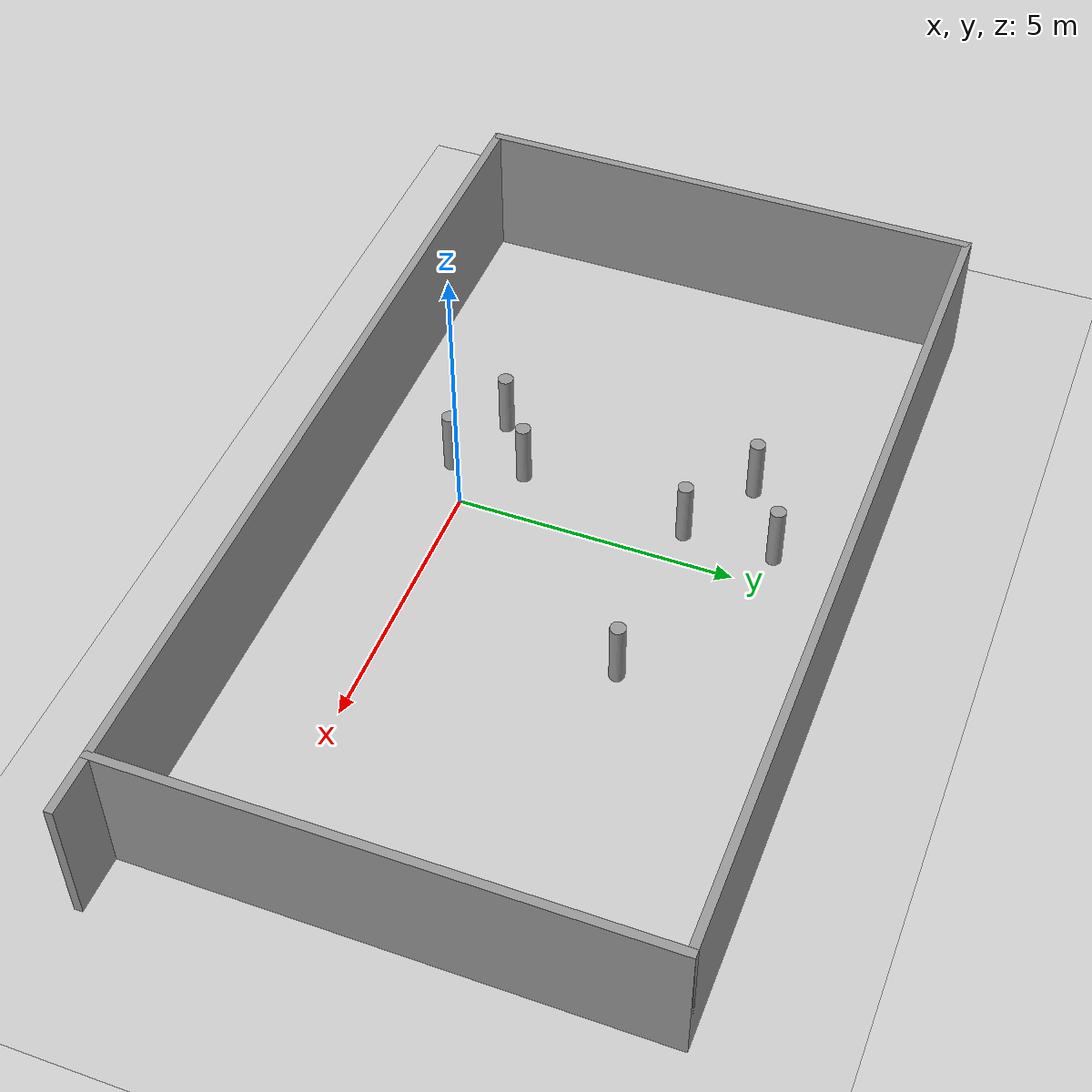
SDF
<sdf version="1.7">
 <world name="default">
  <light name="sun" type="directional">
   <pose>0 0 10 0 -0 0</pose>
   <diffuse>0.8 0.8 0.8 1</diffuse>
   <specular>0.2 0.2 0.2 1</specular>
   <attenuation>
    <range>1000</range>
    <constant>0.9</constant>
    <linear>0.01</linear>
    <quadratic>0.001</quadratic>
   </attenuation>
   <direction>-0.5 0.1 -0.9</direction>
   <spot><inner_angle>0</inner_angle><outer_angle>0</outer_angle><falloff>0</falloff></spot>
  </light>
  <model name="ground_plane">
   <static>1</static>
   <link name="link">
    <collision name="collision">
     <geometry><plane><normal>0 0 1</normal><size>100 100</size></plane></geometry>
     <surface>
      <contact><collide_bitmask>65535</collide_bitmask></contact>
      <friction><ode><mu>100</mu><mu2>50</mu2></ode></friction>
     </surface>
    </collision>
    <visual name="visual">
     <cast_shadows>0</cast_shadows>
     <geometry><plane><normal>0 0 1</normal><size>100 100</size></plane></geometry>
     <material>
      <script><uri>file://media/materials/scripts/gazebo.material</uri><name>Gazebo/Grey</name></script>
     </material>
    </visual>
   </link>
  </model>
  <gravity>0 0 -9.8</gravity>
  <magnetic_field>6e-06 2.3e-05 -4.2e-05</magnetic_field>
  <atmosphere type="adiabatic"/>
  <physics type="ode">
   <max_step_size>0.001</max_step_size>
   <real_time_factor>1</real_time_factor>
   <real_time_update_rate>1000</real_time_update_rate>
  </physics>
  <scene><ambient>0.4 0.4 0.4 1</ambient><background>0.7 0.7 0.7 1</background><shadows>1</shadows></scene>
  <spherical_coordinates>
   <surface_model>EARTH_WGS84</surface_model>
   <latitude_deg>0</latitude_deg>
   <longitude_deg>0</longitude_deg>
   <elevation>0</elevation>
   <heading_deg>0</heading_deg>
  </spherical_coordinates>
  <model name="smaller_cylinder">
   <model name="smaller_cylinder_1">
    <link name="link">
     <inertial>
      <mass>0.0872829</mass>
      <inertia>
       <ixx>0.0108064</ixx>
       <ixy>0</ixy>
       <ixz>0</ixz>
       <iyy>0.0108064</iyy>
       <iyz>0</iyz>
       <izz>0.000796093</izz>
      </inertia>
     </inertial>
     <visual name="visual">
      <geometry><cylinder><radius>0.135062</radius><length>1.19624</length></cylinder></geometry>
      <material>
       <script><name>Gazebo/Grey</name><uri>file://media/materials/scripts/gazebo.material</uri></script>
       <shader type="pixel"/>
      </material>
     </visual>
     <collision name="collision">
      <geometry><cylinder><radius>0.135062</radius><length>1.19624</length></cylinder></geometry>
      <surface>
       <friction>
        <ode><mu>1</mu><mu2>1</mu2><fdir1>0 0 0</fdir1><slip1>0</slip1><slip2>0</slip2></ode>
        <torsional>
         <coefficient>1</coefficient>
         <patch_radius>0</patch_radius>
         <surface_radius>0</surface_radius>
         <use_patch_radius>1</use_patch_radius>
         <ode><slip>0</slip></ode>
        </torsional>
       </friction>
       <bounce><restitution_coefficient>0</restitution_coefficient><threshold>1e+06</threshold></bounce>
       <contact>
        <collide_without_contact>0</collide_without_contact>
        <collide_without_contact_bitmask>1</collide_without_contact_bitmask>
        <collide_bitmask>1</collide_bitmask>
        <ode>
         <soft_cfm>0</soft_cfm>
         <soft_erp>0.2</soft_erp>
         <kp>1e+13</kp>
         <kd>1</kd>
         <max_vel>0.01</max_vel>
         <min_depth>0</min_depth>
        </ode>
        <bullet>
         <split_impulse>1</split_impulse>
         <split_impulse_penetration_threshold>-0.01</split_impulse_penetration_threshold>
         <soft_cfm>0</soft_cfm>
         <soft_erp>0.2</soft_erp>
         <kp>1e+13</kp>
         <kd>1</kd>
        </bullet>
       </contact>
      </surface>
     </collision>
    </link>
    <static>1</static>
    <pose>0.044198 -0.101528 0 0 -0 0</pose>
   </model>
   <static>1</static>
   <allow_auto_disable>0</allow_auto_disable>
   <pose>-0.834606 -0.386835 0.598119 0 -0 0</pose>
  </model>
  <model name="smaller_cylinder_0">
   <model name="smaller_cylinder_1">
    <link name="link">
     <inertial>
      <mass>0.0872829</mass>
      <inertia>
       <ixx>0.0108064</ixx>
       <ixy>0</ixy>
       <ixz>0</ixz>
       <iyy>0.0108064</iyy>
       <iyz>0</iyz>
       <izz>0.000796093</izz>
      </inertia>
     </inertial>
     <visual name="visual">
      <geometry><cylinder><radius>0.135062</radius><length>1.19624</length></cylinder></geometry>
      <material>
       <script><name>Gazebo/Grey</name><uri>file://media/materials/scripts/gazebo.material</uri></script>
       <shader type="pixel"/>
      </material>
     </visual>
     <collision name="collision">
      <geometry><cylinder><radius>0.135062</radius><length>1.19624</length></cylinder></geometry>
      <surface>
       <friction>
        <ode><mu>1</mu><mu2>1</mu2><fdir1>0 0 0</fdir1><slip1>0</slip1><slip2>0</slip2></ode>
        <torsional>
         <coefficient>1</coefficient>
         <patch_radius>0</patch_radius>
         <surface_radius>0</surface_radius>
         <use_patch_radius>1</use_patch_radius>
         <ode><slip>0</slip></ode>
        </torsional>
       </friction>
       <bounce><restitution_coefficient>0</restitution_coefficient><threshold>1e+06</threshold></bounce>
       <contact>
        <collide_without_contact>0</collide_without_contact>
        <collide_without_contact_bitmask>1</collide_without_contact_bitmask>
        <collide_bitmask>1</collide_bitmask>
        <ode>
         <soft_cfm>0</soft_cfm>
         <soft_erp>0.2</soft_erp>
         <kp>1e+13</kp>
         <kd>1</kd>
         <max_vel>0.01</max_vel>
         <min_depth>0</min_depth>
        </ode>
        <bullet>
         <split_impulse>1</split_impulse>
         <split_impulse_penetration_threshold>-0.01</split_impulse_penetration_threshold>
         <soft_cfm>0</soft_cfm>
         <soft_erp>0.2</soft_erp>
         <kp>1e+13</kp>
         <kd>1</kd>
        </bullet>
       </contact>
      </surface>
     </collision>
    </link>
    <static>1</static>
    <pose>0.044198 -0.101528 0 0 -0 0</pose>
   </model>
   <static>1</static>
   <allow_auto_disable>0</allow_auto_disable>
   <pose>-1.00971 0.92644 0.598112 0 -0 0</pose>
  </model>
  <model name="smaller_cylinder_2">
   <model name="smaller_cylinder_1">
    <link name="link">
     <inertial>
      <mass>0.0872829</mass>
      <inertia>
       <ixx>0.0108064</ixx>
       <ixy>0</ixy>
       <ixz>0</ixz>
       <iyy>0.0108064</iyy>
       <iyz>0</iyz>
       <izz>0.000796093</izz>
      </inertia>
     </inertial>
     <visual name="visual">
      <geometry><cylinder><radius>0.135062</radius><length>1.19624</length></cylinder></geometry>
      <material>
       <script><name>Gazebo/Grey</name><uri>file://media/materials/scripts/gazebo.material</uri></script>
       <shader type="pixel"/>
      </material>
     </visual>
     <collision name="collision">
      <geometry><cylinder><radius>0.135062</radius><length>1.19624</length></cylinder></geometry>
      <surface>
       <friction>
        <ode><mu>1</mu><mu2>1</mu2><fdir1>0 0 0</fdir1><slip1>0</slip1><slip2>0</slip2></ode>
        <torsional>
         <coefficient>1</coefficient>
         <patch_radius>0</patch_radius>
         <surface_radius>0</surface_radius>
         <use_patch_radius>1</use_patch_radius>
         <ode><slip>0</slip></ode>
        </torsional>
       </friction>
       <bounce><restitution_coefficient>0</restitution_coefficient><threshold>1e+06</threshold></bounce>
       <contact>
        <collide_without_contact>0</collide_without_contact>
        <collide_without_contact_bitmask>1</collide_without_contact_bitmask>
        <collide_bitmask>1</collide_bitmask>
        <ode>
         <soft_cfm>0</soft_cfm>
         <soft_erp>0.2</soft_erp>
         <kp>1e+13</kp>
         <kd>1</kd>
         <max_vel>0.01</max_vel>
         <min_depth>0</min_depth>
        </ode>
        <bullet>
         <split_impulse>1</split_impulse>
         <split_impulse_penetration_threshold>-0.01</split_impulse_penetration_threshold>
         <soft_cfm>0</soft_cfm>
         <soft_erp>0.2</soft_erp>
         <kp>1e+13</kp>
         <kd>1</kd>
        </bullet>
       </contact>
      </surface>
     </collision>
    </link>
    <static>1</static>
    <pose>0.044198 -0.101528 0 0 -0 0</pose>
   </model>
   <static>1</static>
   <allow_auto_disable>0</allow_auto_disable>
   <pose>-2.07335 0.175208 0.598119 0 -0 0</pose>
  </model>
  <model name="smaller_cylinder_3">
   <model name="smaller_cylinder_1">
    <link name="link">
     <inertial>
      <mass>0.0872829</mass>
      <inertia>
       <ixx>0.0108064</ixx>
       <ixy>0</ixy>
       <ixz>0</ixz>
       <iyy>0.0108064</iyy>
       <iyz>0</iyz>
       <izz>0.000796093</izz>
      </inertia>
     </inertial>
     <visual name="visual">
      <geometry><cylinder><radius>0.135062</radius><length>1.19624</length></cylinder></geometry>
      <material>
       <script><name>Gazebo/Grey</name><uri>file://media/materials/scripts/gazebo.material</uri></script>
       <shader type="pixel"/>
      </material>
     </visual>
     <collision name="collision">
      <geometry><cylinder><radius>0.135062</radius><length>1.19624</length></cylinder></geometry>
      <surface>
       <friction>
        <ode><mu>1</mu><mu2>1</mu2><fdir1>0 0 0</fdir1><slip1>0</slip1><slip2>0</slip2></ode>
        <torsional>
         <coefficient>1</coefficient>
         <patch_radius>0</patch_radius>
         <surface_radius>0</surface_radius>
         <use_patch_radius>1</use_patch_radius>
         <ode><slip>0</slip></ode>
        </torsional>
       </friction>
       <bounce><restitution_coefficient>0</restitution_coefficient><threshold>1e+06</threshold></bounce>
       <contact>
        <collide_without_contact>0</collide_without_contact>
        <collide_without_contact_bitmask>1</collide_without_contact_bitmask>
        <collide_bitmask>1</collide_bitmask>
        <ode>
         <soft_cfm>0</soft_cfm>
         <soft_erp>0.2</soft_erp>
         <kp>1e+13</kp>
         <kd>1</kd>
         <max_vel>0.01</max_vel>
         <min_depth>0</min_depth>
        </ode>
        <bullet>
         <split_impulse>1</split_impulse>
         <split_impulse_penetration_threshold>-0.01</split_impulse_penetration_threshold>
         <soft_cfm>0</soft_cfm>
         <soft_erp>0.2</soft_erp>
         <kp>1e+13</kp>
         <kd>1</kd>
        </bullet>
       </contact>
      </surface>
     </collision>
    </link>
    <static>1</static>
    <pose>0.044198 -0.101528 0 0 -0 0</pose>
   </model>
   <static>1</static>
   <allow_auto_disable>0</allow_auto_disable>
   <pose>-0.687575 5.64178 0.598119 0 -0 0</pose>
  </model>
  <model name="smaller_cylinder_4">
   <model name="smaller_cylinder_1">
    <link name="link">
     <inertial>
      <mass>0.0872829</mass>
      <inertia>
       <ixx>0.0108064</ixx>
       <ixy>0</ixy>
       <ixz>0</ixz>
       <iyy>0.0108064</iyy>
       <iyz>0</iyz>
       <izz>0.000796093</izz>
      </inertia>
     </inertial>
     <visual name="visual">
      <geometry><cylinder><radius>0.135062</radius><length>1.19624</length></cylinder></geometry>
      <material>
       <script><name>Gazebo/Grey</name><uri>file://media/materials/scripts/gazebo.material</uri></script>
       <shader type="pixel"/>
      </material>
     </visual>
     <collision name="collision">
      <geometry><cylinder><radius>0.135062</radius><length>1.19624</length></cylinder></geometry>
      <surface>
       <friction>
        <ode><mu>1</mu><mu2>1</mu2><fdir1>0 0 0</fdir1><slip1>0</slip1><slip2>0</slip2></ode>
        <torsional>
         <coefficient>1</coefficient>
         <patch_radius>0</patch_radius>
         <surface_radius>0</surface_radius>
         <use_patch_radius>1</use_patch_radius>
         <ode><slip>0</slip></ode>
        </torsional>
       </friction>
       <bounce><restitution_coefficient>0</restitution_coefficient><threshold>1e+06</threshold></bounce>
       <contact>
        <collide_without_contact>0</collide_without_contact>
        <collide_without_contact_bitmask>1</collide_without_contact_bitmask>
        <collide_bitmask>1</collide_bitmask>
        <ode>
         <soft_cfm>0</soft_cfm>
         <soft_erp>0.2</soft_erp>
         <kp>1e+13</kp>
         <kd>1</kd>
         <max_vel>0.01</max_vel>
         <min_depth>0</min_depth>
        </ode>
        <bullet>
         <split_impulse>1</split_impulse>
         <split_impulse_penetration_threshold>-0.01</split_impulse_penetration_threshold>
         <soft_cfm>0</soft_cfm>
         <soft_erp>0.2</soft_erp>
         <kp>1e+13</kp>
         <kd>1</kd>
        </bullet>
       </contact>
      </surface>
     </collision>
    </link>
    <static>1</static>
    <pose>0.044198 -0.101528 0 0 -0 0</pose>
   </model>
   <static>1</static>
   <allow_auto_disable>0</allow_auto_disable>
   <pose>-0.675037 4.01863 0.598119 0 -0 0</pose>
  </model>
  <model name="smaller_cylinder_5">
   <model name="smaller_cylinder_1">
    <link name="link">
     <inertial>
      <mass>0.0872829</mass>
      <inertia>
       <ixx>0.0108064</ixx>
       <ixy>0</ixy>
       <ixz>0</ixz>
       <iyy>0.0108064</iyy>
       <iyz>0</iyz>
       <izz>0.000796093</izz>
      </inertia>
     </inertial>
     <visual name="visual">
      <geometry><cylinder><radius>0.135062</radius><length>1.19624</length></cylinder></geometry>
      <material>
       <script><name>Gazebo/Grey</name><uri>file://media/materials/scripts/gazebo.material</uri></script>
       <shader type="pixel"/>
      </material>
     </visual>
     <collision name="collision">
      <geometry><cylinder><radius>0.135062</radius><length>1.19624</length></cylinder></geometry>
      <surface>
       <friction>
        <ode><mu>1</mu><mu2>1</mu2><fdir1>0 0 0</fdir1><slip1>0</slip1><slip2>0</slip2></ode>
        <torsional>
         <coefficient>1</coefficient>
         <patch_radius>0</patch_radius>
         <surface_radius>0</surface_radius>
         <use_patch_radius>1</use_patch_radius>
         <ode><slip>0</slip></ode>
        </torsional>
       </friction>
       <bounce><restitution_coefficient>0</restitution_coefficient><threshold>1e+06</threshold></bounce>
       <contact>
        <collide_without_contact>0</collide_without_contact>
        <collide_without_contact_bitmask>1</collide_without_contact_bitmask>
        <collide_bitmask>1</collide_bitmask>
        <ode>
         <soft_cfm>0</soft_cfm>
         <soft_erp>0.2</soft_erp>
         <kp>1e+13</kp>
         <kd>1</kd>
         <max_vel>0.01</max_vel>
         <min_depth>0</min_depth>
        </ode>
        <bullet>
         <split_impulse>1</split_impulse>
         <split_impulse_penetration_threshold>-0.01</split_impulse_penetration_threshold>
         <soft_cfm>0</soft_cfm>
         <soft_erp>0.2</soft_erp>
         <kp>1e+13</kp>
         <kd>1</kd>
        </bullet>
       </contact>
      </surface>
     </collision>
    </link>
    <static>1</static>
    <pose>0.044198 -0.101528 0 0 -0 0</pose>
   </model>
   <static>1</static>
   <allow_auto_disable>0</allow_auto_disable>
   <pose>-2.08928 4.85086 0.598119 0 -0 0</pose>
  </model>
  <model name="smaller_cylinder_4_clone">
   <model name="smaller_cylinder_1">
    <link name="link">
     <inertial>
      <mass>0.0872829</mass>
      <inertia>
       <ixx>0.0108064</ixx>
       <ixy>0</ixy>
       <ixz>0</ixz>
       <iyy>0.0108064</iyy>
       <iyz>0</iyz>
       <izz>0.000796093</izz>
      </inertia>
     </inertial>
     <visual name="visual">
      <geometry><cylinder><radius>0.135062</radius><length>1.19624</length></cylinder></geometry>
      <material>
       <script><name>Gazebo/Grey</name><uri>file://media/materials/scripts/gazebo.material</uri></script>
       <shader type="pixel"/>
      </material>
     </visual>
     <collision name="collision">
      <geometry><cylinder><radius>0.135062</radius><length>1.19624</length></cylinder></geometry>
      <surface>
       <friction>
        <ode><mu>1</mu><mu2>1</mu2><fdir1>0 0 0</fdir1><slip1>0</slip1><slip2>0</slip2></ode>
        <torsional>
         <coefficient>1</coefficient>
         <patch_radius>0</patch_radius>
         <surface_radius>0</surface_radius>
         <use_patch_radius>1</use_patch_radius>
         <ode><slip>0</slip></ode>
        </torsional>
       </friction>
       <bounce><restitution_coefficient>0</restitution_coefficient><threshold>1e+06</threshold></bounce>
       <contact>
        <collide_without_contact>0</collide_without_contact>
        <collide_without_contact_bitmask>1</collide_without_contact_bitmask>
        <collide_bitmask>1</collide_bitmask>
        <ode>
         <soft_cfm>0</soft_cfm>
         <soft_erp>0.2</soft_erp>
         <kp>1e+13</kp>
         <kd>1</kd>
         <max_vel>0.01</max_vel>
         <min_depth>0</min_depth>
        </ode>
        <bullet>
         <split_impulse>1</split_impulse>
         <split_impulse_penetration_threshold>-0.01</split_impulse_penetration_threshold>
         <soft_cfm>0</soft_cfm>
         <soft_erp>0.2</soft_erp>
         <kp>1e+13</kp>
         <kd>1</kd>
        </bullet>
       </contact>
      </surface>
     </collision>
    </link>
    <static>1</static>
    <pose>0.044198 -0.101528 0 0 -0 0</pose>
   </model>
   <static>1</static>
   <allow_auto_disable>0</allow_auto_disable>
   <pose>2.64579 3.99849 0.598119 0 -0 0</pose>
  </model>
  <model name="room">
   <pose>1.33467 2.50825 0 0 -0 0</pose>
   <link name="Wall_3">
    <collision name="Wall_3_Collision">
     <geometry><box><size>16.75 0.15 2.5</size></box></geometry>
     <pose>0 0 1.25 0 -0 0</pose>
    </collision>
    <visual name="Wall_3_Visual">
     <pose>0 0 1.25 0 -0 0</pose>
     <geometry><box><size>16.75 0.15 2.5</size></box></geometry>
     <material>
      <script><uri>file://media/materials/scripts/gazebo.material</uri><name>Gazebo/Grey</name></script>
      <ambient>1 1 1 1</ambient>
     </material>
     <meta><layer>0</layer></meta>
    </visual>
    <pose>0 -4.55 0 0 -0 0</pose>
   </link>
   <link name="Wall_6">
    <collision name="Wall_6_Collision">
     <geometry><box><size>9.25 0.15 2.5</size></box></geometry>
     <pose>0 0 1.25 0 -0 0</pose>
    </collision>
    <visual name="Wall_6_Visual">
     <pose>0 0 1.25 0 -0 0</pose>
     <geometry><box><size>9.25 0.15 2.5</size></box></geometry>
     <material>
      <script><uri>file://media/materials/scripts/gazebo.material</uri><name>Gazebo/Grey</name></script>
      <ambient>1 1 1 1</ambient>
     </material>
     <meta><layer>0</layer></meta>
    </visual>
    <pose>-8.3 0 0 0 -0 1.5708</pose>
   </link>
   <link name="Wall_7">
    <collision name="Wall_7_Collision">
     <geometry><box><size>15.75 0.15 2.5</size></box></geometry>
     <pose>0 0 1.25 0 -0 0</pose>
    </collision>
    <visual name="Wall_7_Visual">
     <pose>0 0 1.25 0 -0 0</pose>
     <geometry><box><size>15.75 0.15 2.5</size></box></geometry>
     <material>
      <script><uri>file://media/materials/scripts/gazebo.material</uri><name>Gazebo/Grey</name></script>
      <ambient>1 1 1 1</ambient>
     </material>
     <meta><layer>0</layer></meta>
    </visual>
    <pose>-0.5 4.55 0 0 -0 0</pose>
   </link>
   <link name="Wall_8">
    <collision name="Wall_8_Collision">
     <geometry><box><size>9.25 0.15 2.5</size></box></geometry>
     <pose>0 0 1.25 0 -0 0</pose>
    </collision>
    <visual name="Wall_8_Visual">
     <pose>0 0 1.25 0 -0 0</pose>
     <geometry><box><size>9.25 0.15 2.5</size></box></geometry>
     <material>
      <script><uri>file://media/materials/scripts/gazebo.material</uri><name>Gazebo/Grey</name></script>
      <ambient>1 1 1 1</ambient>
     </material>
     <meta><layer>0</layer></meta>
    </visual>
    <pose>7.3 0 0 0 -0 -1.5708</pose>
   </link>
   <static>1</static>
  </model>
 </world>
</sdf>
